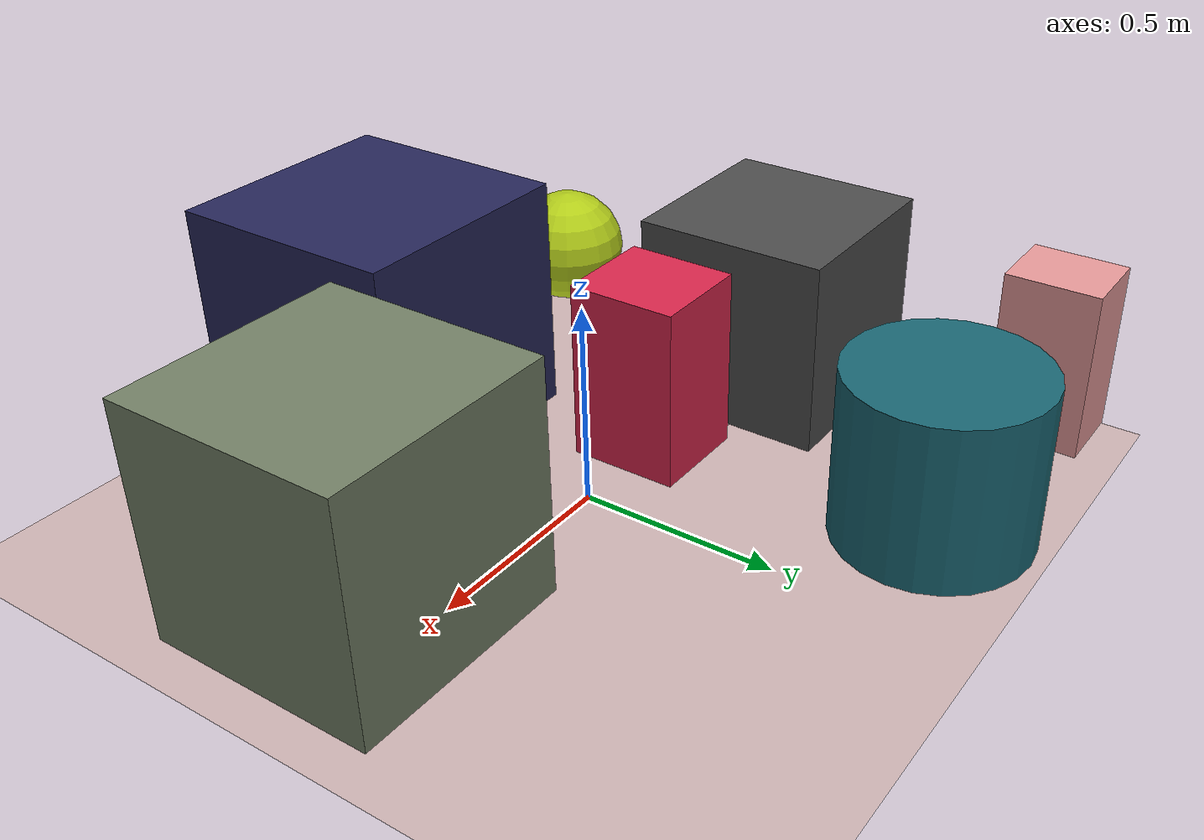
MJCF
<mujoco>
   <asset>
<texture type="skybox" builtin="gradient" rgb1="0.1 0.3 0.1" rgb2="0.1 0.3 0.5" width="256" height="256"/>
<texture name="gradient_0" builtin="gradient" rgb1="0.8 0.9 0.5" rgb2="0.1 0.1 0.3" width="200" height="200"/>
<texture name="flat_1" builtin="flat" rgb1="0.9 0.6 0.6" rgb2="0.9 0.6 0.6"  width="200" height="200"/>
<texture name="flat_2" builtin="flat" rgb1="0.3 0.3 0.3" rgb2="0.3 0.3 0.3"  width="200" height="200"/>
<texture name="flat_3" builtin="flat" rgb1="0.7 0.8 0.1" rgb2="0.7 0.8 0.1"  width="200" height="200"/>
<texture name="gradient_4" builtin="gradient" rgb1="0.8 0.3 0.0" rgb2="0.9 0.0 0.6" width="200" height="200"/>
<texture name="gradient_5" builtin="gradient" rgb1="0.2 0.1 0.3" rgb2="0.1 0.2 0.4" width="200" height="200"/>
<texture name="gradient_6" builtin="gradient" rgb1="0.2 0.1 0.7" rgb2="0.0 0.7 0.2" width="200" height="200"/><material name="gradient_0_mat" reflectance="0" texture="gradient_0" texuniform="true"/>
<material name="flat_1_mat" reflectance="0" texture="flat_1" texuniform="true"/>
<material name="flat_2_mat" reflectance="0" texture="flat_2" texuniform="true"/>
<material name="flat_3_mat" reflectance="0" texture="flat_3" texuniform="true"/>
<material name="gradient_4_mat" reflectance="0" texture="gradient_4" texuniform="true"/>
<material name="gradient_5_mat" reflectance="0" texture="gradient_5" texuniform="true"/>
<material name="gradient_6_mat" reflectance="0" texture="gradient_6" texuniform="true"/>
   </asset>

   <worldbody>
      <light diffuse=".9 .9 .9" pos="0 0 3" dir="0 0 -1"/>
     <geom type="plane" size="1 1 0.1" rgba="0.8 0.7 0.7 1"/>
<geom type="box" pos="0.61 -0.14 0.29" size="0.29 0.29 0.29" material="gradient_0_mat" />
<geom type="box" pos="-0.9 0.78 0.22" size="0.1 0.12 0.22" material="flat_1_mat" />
<geom type="box" pos="-0.71 0.09 0.25" size="0.25 0.25 0.25" material="flat_2_mat" />
<geom type="sphere" pos="-0.83 -0.68 0.16" size="0.16 0.16 0.16" material="flat_3_mat" />
<geom type="box" pos="-0.27 0.0 0.23" size="0.13 0.14 0.23" material="gradient_4_mat" />
<geom type="box" pos="-0.03 -0.65 0.3" size="0.3 0.3 0.3" material="gradient_5_mat" />
<geom type="cylinder" pos="-0.33 0.73 0.21" size="0.24 0.21 0.21" material="gradient_6_mat" /><camera euler="60 0 180" fovy="60" name="camera_a" pos="0 -1.5 1"></camera>   </worldbody>
</mujoco>
